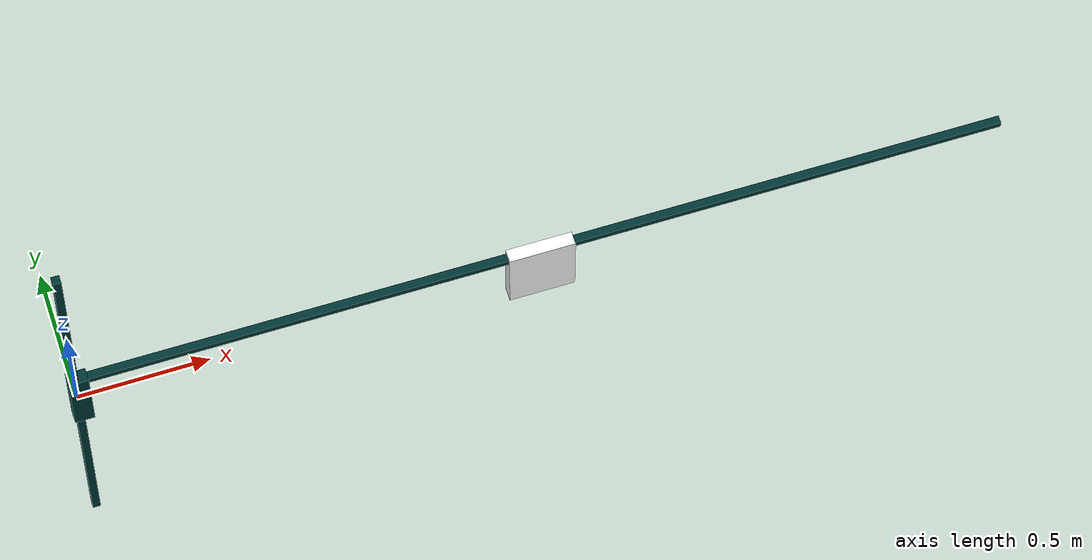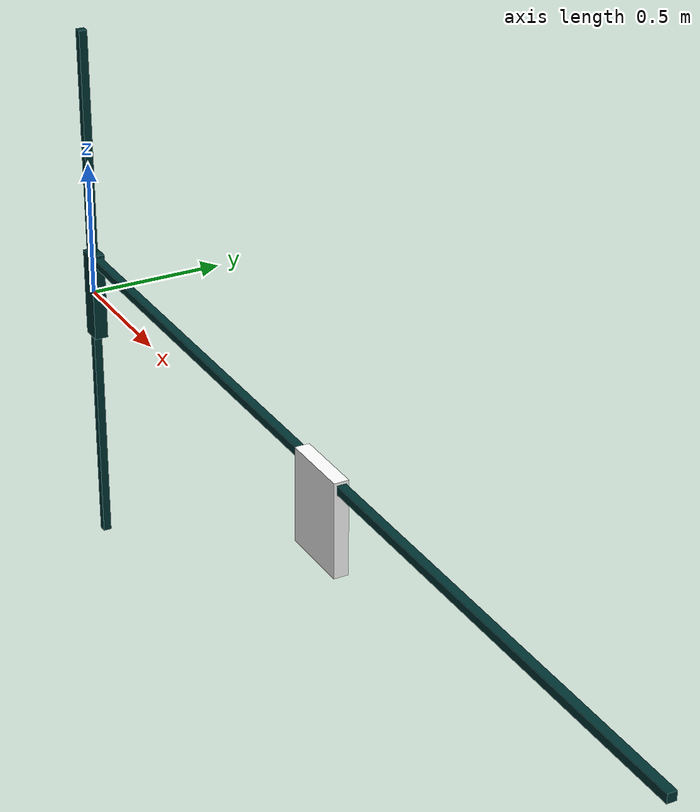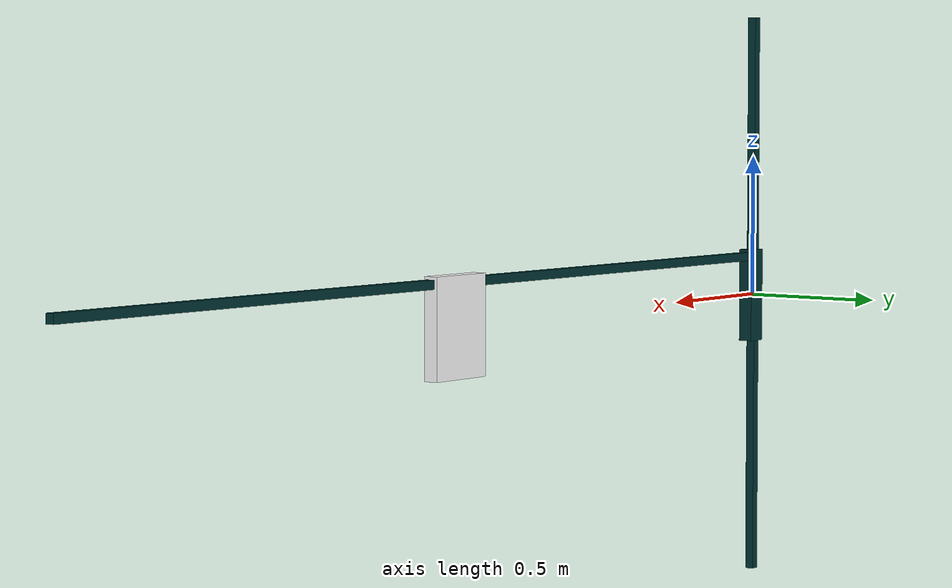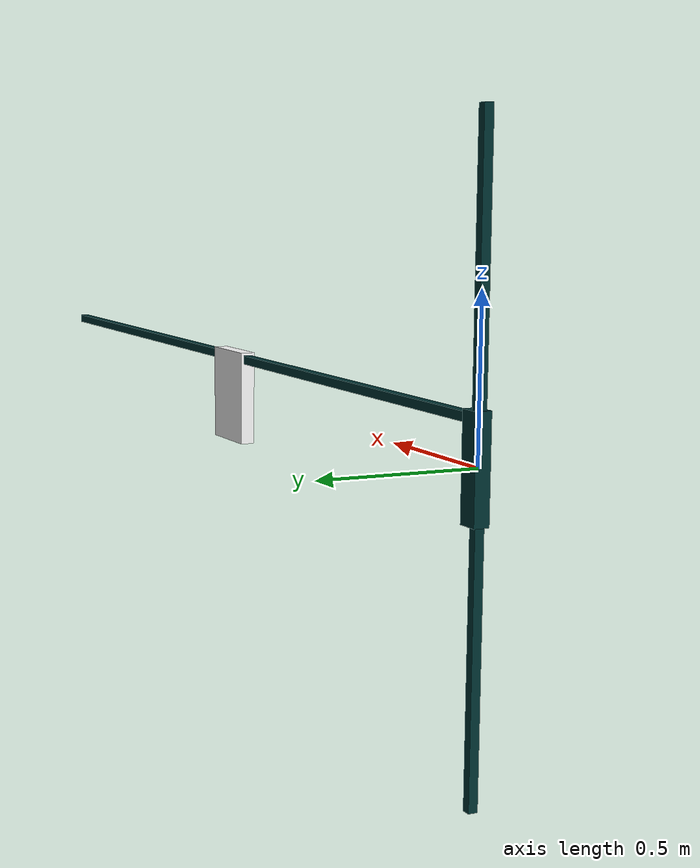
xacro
<?xml version="1.0"?>
<robot name="DSRbot" xmlns:xacro="http://ros.org/wiki/xacro">
<xacro:include filename="$(find DSRbot_description)/urdf/DSRbot.gazebo" />

  <link name="placeholder_base"/>

  <link name="base1_link">
		<visual>
		    <origin xyz="0 0 0" rpy="0 0 0"/>
			<geometry>
				<box size="0.03 0.03 2"/>
			</geometry>
			<material name="cyan3">
	       			<color rgba="0 0.2 0.2 1.0"/>
	     		</material>
		</visual>
		<collision>
		      <origin xyz="0 0 0" rpy="0 0 0"/>
		      <geometry>
			<box size="3.53 0.3 2"/>
		      </geometry>
		    </collision>
		        <inertial>
			      <origin xyz="0 0 0.015" rpy="0 0 0"/>
			      <mass value="1"/>
			      <inertia ixx="1" ixy="0" ixz="0"
				       iyy="1" iyz="0"
				       izz="1" />
			    </inertial>
	</link>
  <link name="soporte1_link">
		<visual>
		    <origin xyz="0.0125 0 0" rpy="0 0 0"/>
			<geometry>
				<box size="0.075 0.05 0.33"/>
			</geometry>
			<material name="cyan2">
	       			<color rgba="0 0.2 0.2 1.0"/>
	     		</material>
		</visual>
				<collision>
		      <origin xyz="0 0 0" rpy="0 0 0"/>
		      <geometry>
			<box size="0.075 0.05 0.33"/>
		      </geometry>
		    </collision>
		        <inertial>
			      <origin xyz="0 0 0.015" rpy="0 0 0"/>
			      <mass value="0.1"/>
			      <inertia ixx="1" ixy="0" ixz="0"
				       iyy="1" iyz="0"
				       izz="1" />
			    </inertial>
	</link>
   <link name="riel1_link">
		<visual>
		    <origin xyz="1.7575 0 0.14" rpy="0 0 0"/>
			<geometry>
				<box size="3.5 0.03 0.03"/>
			</geometry>
			<material name="cyan3">
	       			<color rgba="0 0.2 0.2 1.0"/>
	     		</material>
		</visual>
						<collision>
		      <origin xyz="0 0 0" rpy="0 0 0"/>
		      <geometry>
			<box size="3.5 0.03 0.03"/>
		      </geometry>
		    </collision>
		        <inertial>
			      <origin xyz="0 0 0.015" rpy="0 0 0"/>
			      <mass value="1"/>
			      <inertia ixx="1.4e-03" ixy="0" ixz="0"
				       iyy="1.4e-03" iyz="0"
				       izz="2.695e-03" />
			    </inertial>
	</link>
   <link name="carrier_link">
		<visual>
		    <origin xyz="1.75 0 0" rpy="0 0 0"/>
			<geometry>
				<box size="0.25 0.05 0.33"/>
			</geometry>
			<material name="n3">
	       			<color rgba="1 1 1 1.0"/>
	     		</material>
		</visual>
								<collision>
		      <origin xyz="0 0 0" rpy="0 0 0"/>
		      <geometry>
			<box size="0.25 0.05 0.33"/>
		      </geometry>
		    </collision>
		        <inertial>
			      <origin xyz="0 0 0.015" rpy="0 0 0"/>
			      <mass value="0.1"/>
			      <inertia ixx="1.4e-03" ixy="0" ixz="0"
				       iyy="1.4e-03" iyz="0"
				       izz="2.695e-03" />
			    </inertial>
	</link>
<joint name="base_joint" type="fixed">
    <origin xyz="0 0 0" rpy="0 0 0"/>
    <parent link="placeholder_base"/>
    <child link="base1_link"/>
</joint>
<joint name="soporte1_joint" type="prismatic">
    <origin xyz="0 0 0" rpy="0 0 0"/>
    <parent link="base1_link"/>
    <child link="soporte1_link"/>
    <axis xyz="0 0 1"/>
    <limit upper="0.95" lower="-0.83" velocity="10" effort="100"/>
  </joint>
<joint name="riel1_joint" type="fixed">
    <origin xyz="0 0 0" rpy="0 0 0"/>
    <parent link="soporte1_link"/>
    <child link="riel1_link"/>
  </joint>
<joint name="carrier_joint" type="prismatic">
    <origin xyz="0 0 0" rpy="0 0 0"/>
    <parent link="riel1_link"/>
    <child link="carrier_link"/>
    <axis xyz="1 0 0"/>
    <limit upper="1.575" lower="-1.575" velocity="1" effort="100"/>
  </joint>

  <transmission name="t1">
    <type>transmission_interface/SimpleTransmission</type>
    <joint name="soporte1_joint">
	<hardwareInterface>hardware_interface/EffortJointInterface</hardwareInterface>
    </joint>
    <actuator name="motor1">
      <hardwareInterface>hardware_interface/EffortJointInterface</hardwareInterface>
      <mechanicalReduction>10</mechanicalReduction>
    </actuator>
  </transmission>

  <transmission name="t2">
    <type>transmission_interface/SimpleTransmission</type>
    <joint name="carrier_joint">
	<hardwareInterface>hardware_interface/EffortJointInterface</hardwareInterface>
    </joint>
    <actuator name="motor2">
      <hardwareInterface>hardware_interface/EffortJointInterface</hardwareInterface>
      <mechanicalReduction>10</mechanicalReduction>
    </actuator>
  </transmission>

</robot>
